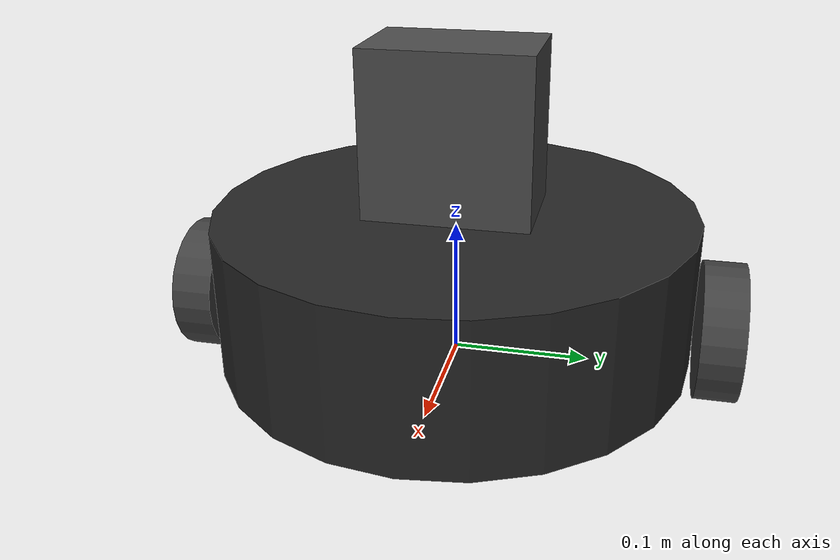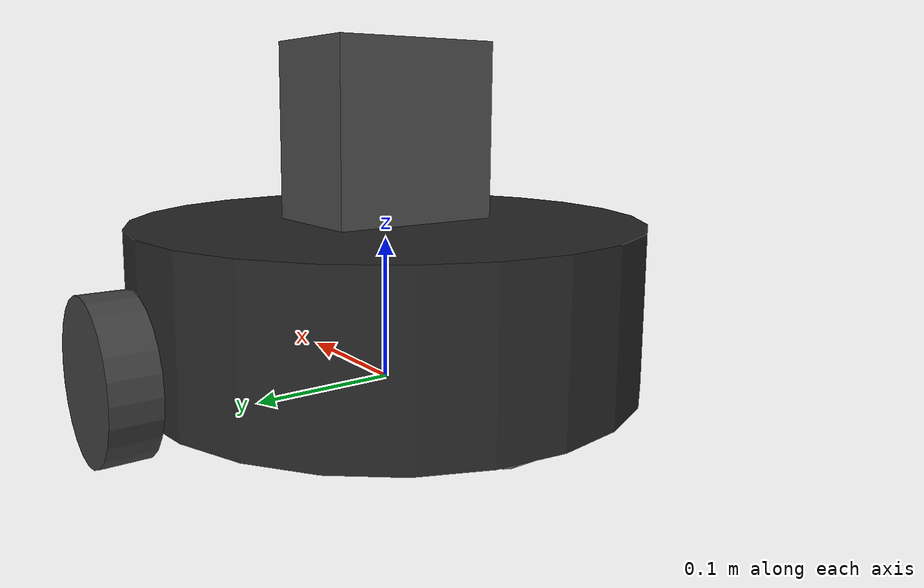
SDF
<?xml version="1.0" ?>
<sdf version="1.8">
  <model name="qbot" canonical_link="base_link">

    <pose>0 0 0 0 0 0</pose>

    <link name="base_link">
      <pose>0 0 0.05949 0 0 0</pose>
      <inertial>
        <mass>2.4</mass>
        <inertia>
          <ixx>0.019995</ixx>
          <ixy>0</ixy>
          <ixz>0</ixz>
          <iyy>0.019995</iyy>
          <iyz>0</iyz>
          <izz>0.03675</izz>
        </inertia>
      </inertial>
      <visual name="base_visual">
        <geometry>
          <cylinder>
            <length>0.10938</length>
            <radius>0.175</radius>
          </cylinder>
        </geometry>
        <material>
          <ambient>0.1 0.1 0.1 1</ambient>
          <diffuse>0.15 0.15 0.15 1</diffuse>
          <specular>0.05 0.05 0.05 1</specular>
        </material>
      </visual>
      <collision name="base_collision">
        <geometry>
          <cylinder>
            <length>0.10938</length>
            <radius>0.175</radius>
          </cylinder>
        </geometry>
      </collision>
    </link>

    <!-- Left wheel
         Assumption:
         - Exact wheel radius / wheel placement are still estimated because the datasheet
           does not provide them directly -->
    <link name="wheel_left_link">
      <pose relative_to="base_link">0 0.193 -0.0245 -1.57079632679 0 0</pose>
      <inertial>
        <mass>0.01</mass>
        <inertia>
          <ixx>0.001</ixx>
          <ixy>0</ixy>
          <ixz>0</ixz>
          <iyy>0.001</iyy>
          <iyz>0</iyz>
          <izz>0.001</izz>
        </inertia>
      </inertial>
      <visual name="wheel_left_visual">
        <geometry>
          <cylinder>
            <length>0.03</length>
            <radius>0.05</radius>
          </cylinder>
        </geometry>
        <material>
          <ambient>0.2 0.2 0.2 1</ambient>
          <diffuse>0.25 0.25 0.25 1</diffuse>
          <specular>0.05 0.05 0.05 1</specular>
        </material>
      </visual>
      <collision name="wheel_left_collision">
        <geometry>
          <cylinder>
            <length>0.03</length>
            <radius>0.05</radius>
          </cylinder>
        </geometry>
      </collision>
    </link>

    <!-- Right wheel
         Assumption:
         - Same note as left wheel -->
    <link name="wheel_right_link">
      <pose relative_to="base_link">0 -0.193 -0.0245 -1.57079632679 0 0</pose>
      <inertial>
        <mass>0.01</mass>
        <inertia>
          <ixx>0.001</ixx>
          <ixy>0</ixy>
          <ixz>0</ixz>
          <iyy>0.001</iyy>
          <iyz>0</iyz>
          <izz>0.001</izz>
        </inertia>
      </inertial>
      <visual name="wheel_right_visual">
        <geometry>
          <cylinder>
            <length>0.03</length>
            <radius>0.05</radius>
          </cylinder>
        </geometry>
        <material>
          <ambient>0.2 0.2 0.2 1</ambient>
          <diffuse>0.25 0.25 0.25 1</diffuse>
          <specular>0.05 0.05 0.05 1</specular>
        </material>
      </visual>
      <collision name="wheel_right_collision">
        <geometry>
          <cylinder>
            <length>0.03</length>
            <radius>0.05</radius>
          </cylinder>
        </geometry>
      </collision>
    </link>

    <link name="caster_front_link">
      <pose relative_to="base_link">0.115 0 -0.0485 -1.57079632679 0 0</pose>
      <inertial>
        <mass>0.005</mass>
        <inertia>
          <ixx>0.0001</ixx>
          <ixy>0</ixy>
          <ixz>0</ixz>
          <iyy>0.0001</iyy>
          <iyz>0</iyz>
          <izz>0.0001</izz>
        </inertia>
      </inertial>
      <visual name="caster_front_visual">
        <geometry>
          <cylinder>
            <length>0.03</length>
            <radius>0.025</radius>
          </cylinder>
        </geometry>
        <material>
          <ambient>0.4 0.4 0.4 1</ambient>
          <diffuse>0.45 0.45 0.45 1</diffuse>
          <specular>0.05 0.05 0.05 1</specular>
        </material>
      </visual>
      <collision name="caster_front_collision">
        <geometry>
          <cylinder>
            <length>0.001</length>
            <radius>0.001</radius>
          </cylinder>
        </geometry>
      </collision>
    </link>

    <!-- Back caster
         Assumption:
         - Same approach as front caster: visual preserved, collision minimized -->
    <link name="caster_back_link">
      <pose relative_to="base_link">-0.135 0 -0.0485 -1.57079632679 0 0</pose>
      <inertial>
        <mass>0.005</mass>
        <inertia>
          <ixx>0.0001</ixx>
          <ixy>0</ixy>
          <ixz>0</ixz>
          <iyy>0.0001</iyy>
          <iyz>0</iyz>
          <izz>0.0001</izz>
        </inertia>
      </inertial>
      <visual name="caster_back_visual">
        <geometry>
          <cylinder>
            <length>0.03</length>
            <radius>0.025</radius>
          </cylinder>
        </geometry>
        <material>
          <ambient>0.4 0.4 0.4 1</ambient>
          <diffuse>0.45 0.45 0.45 1</diffuse>
          <specular>0.05 0.05 0.05 1</specular>
        </material>
      </visual>
      <collision name="caster_back_collision">
        <geometry>
          <cylinder>
            <length>0.001</length>
            <radius>0.001</radius>
          </cylinder>
        </geometry>
      </collision>
    </link>

    <link name="sensor_mount_link">
      <pose relative_to="base_link">0 0 0.11469 0 0 0</pose>
      <inertial>
        <mass>0.01</mass>
        <inertia>
          <ixx>0.0001</ixx>
          <ixy>0</ixy>
          <ixz>0</ixz>
          <iyy>0.0001</iyy>
          <iyz>0</iyz>
          <izz>0.0001</izz>
        </inertia>
      </inertial>
      <visual name="sensor_mount_visual">
        <geometry>
          <box>
            <size>0.08 0.12 0.12</size>
          </box>
        </geometry>
        <material>
          <ambient>0.25 0.25 0.25 1</ambient>
          <diffuse>0.3 0.3 0.3 1</diffuse>
          <specular>0.05 0.05 0.05 1</specular>
        </material>
      </visual>
      <collision name="sensor_mount_collision">
        <geometry>
          <box>
            <size>0.08 0.12 0.12</size>
          </box>
        </geometry>
      </collision>
    </link>

    <!-- Wheel joints
         Assumption:
         - Damping/friction values are simulation-tuning values, not taken from the datasheet
         - Increased slightly to calm wheel oscillation -->
    <joint name="wheel_left_joint" type="revolute">
      <parent>base_link</parent>
      <child>wheel_left_link</child>
      <axis>
        <xyz>0 0 1</xyz>
        <limit>
          <lower>-1.79769e+308</lower>
          <upper>1.79769e+308</upper>
        </limit>
        <dynamics>
          <damping>0.5</damping>
          <friction>0.2</friction>
        </dynamics>
      </axis>
    </joint>

    <joint name="wheel_right_joint" type="revolute">
      <parent>base_link</parent>
      <child>wheel_right_link</child>
      <axis>
        <xyz>0 0 1</xyz>
        <limit>
          <lower>-1.79769e+308</lower>
          <upper>1.79769e+308</upper>
        </limit>
        <dynamics>
          <damping>0.5</damping>
          <friction>0.2</friction>
        </dynamics>
      </axis>
    </joint>

    <!-- Fixed joints -->
    <joint name="caster_front_joint" type="fixed">
      <parent>base_link</parent>
      <child>caster_front_link</child>
    </joint>

    <joint name="caster_back_joint" type="fixed">
      <parent>base_link</parent>
      <child>caster_back_link</child>
    </joint>

    <joint name="sensor_mount_joint" type="fixed">
      <parent>base_link</parent>
      <child>sensor_mount_link</child>
    </joint>

    <plugin
      filename="ignition-gazebo-diff-drive-system"
      name="ignition::gazebo::systems::DiffDrive">
      <left_joint>wheel_left_joint</left_joint>
      <right_joint>wheel_right_joint</right_joint>
      <wheel_separation>0.386</wheel_separation>
      <wheel_radius>0.05</wheel_radius>
      <topic>/model/qbot/cmd_vel</topic>
      <odom_topic>/model/qbot/odometry</odom_topic>
      <tf_topic>/model/qbot/tf</tf_topic>
      <frame_id>odom</frame_id>
      <child_frame_id>base_link</child_frame_id>
    </plugin>

  </model>
</sdf>
